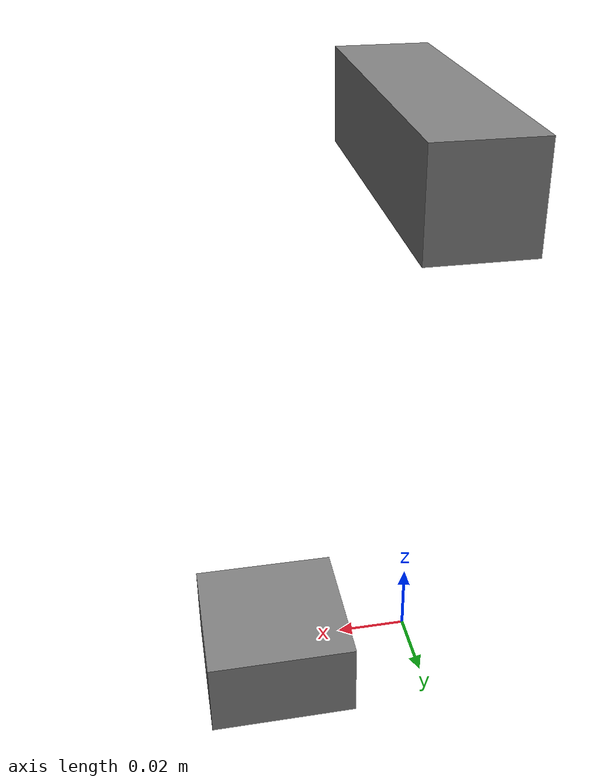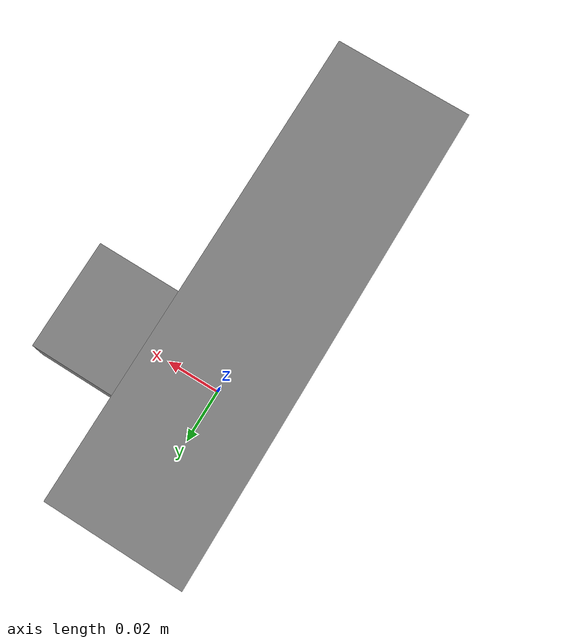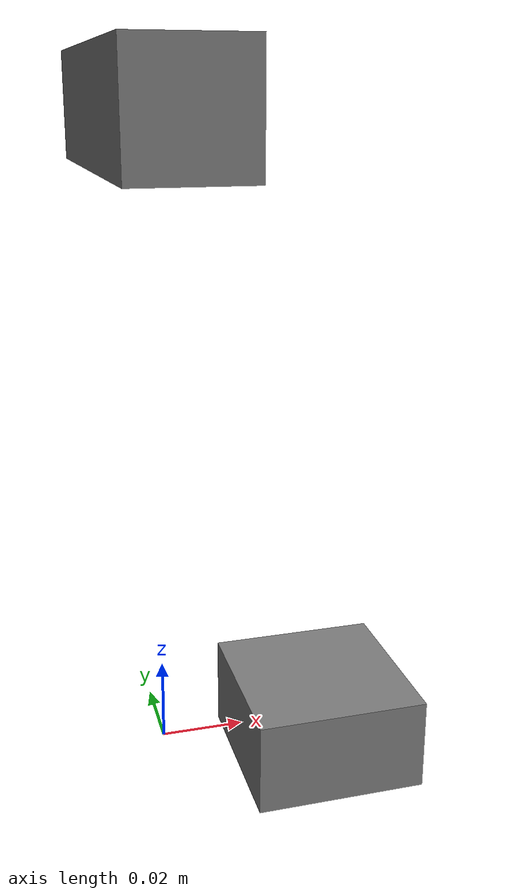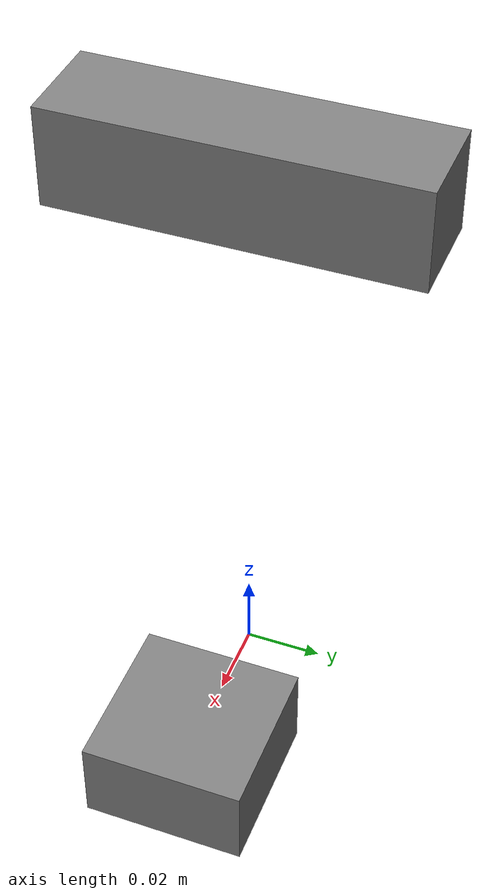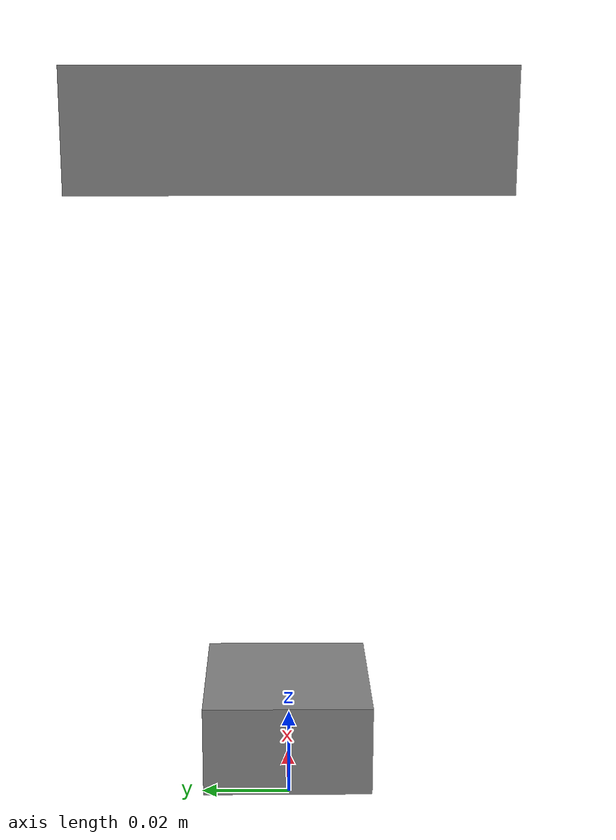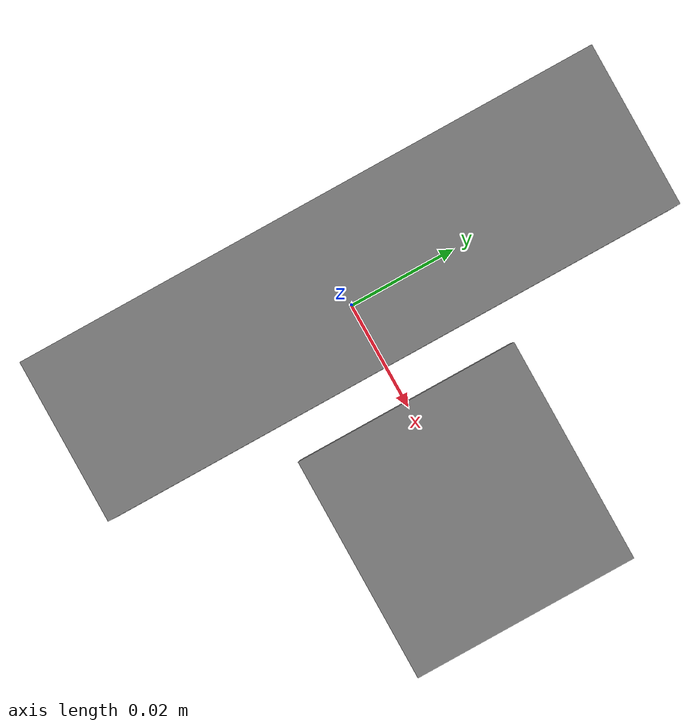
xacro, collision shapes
<?xml version="1.0"?>
<robot name="openarm_cameras" xmlns:xacro="http://www.ros.org/wiki/xacro">

  <xacro:include filename="$(find openarm_description)/urdf/cameras/_d435.urdf.xacro" />
  <xacro:include filename="$(find openarm_description)/urdf/cameras/_d405.urdf.xacro" />

  <!-- 頭部攝像頭 D435 參數 -->
  <xacro:arg name="head_parent" default="openarm_body_link0" />
  <xacro:arg name="head_xyz" default="0 0 0.15" />
  <xacro:arg name="head_rpy" default="0 0 0" />
  <xacro:arg name="head_enabled" default="true" />

  <!-- 左腕攝像頭 D405 參數 -->
  <xacro:arg name="left_parent" default="openarm_left_link7" />
  <xacro:arg name="left_xyz" default="0.04 0 0" />
  <xacro:arg name="left_rpy" default="0 1.5708 0" />
  <xacro:arg name="left_enabled" default="true" />

  <!-- 右腕攝像頭 D405 參數 -->
  <xacro:arg name="right_parent" default="openarm_right_link7" />
  <xacro:arg name="right_xyz" default="0.04 0 0" />
  <xacro:arg name="right_rpy" default="0 1.5708 0" />
  <xacro:arg name="right_enabled" default="true" />

  <!-- 虛擬根 link：與 RViz fixed frame 一致 -->
  <link name="world" />

  <!-- 空 parent link 定義（附加到 world，identity joint 僅為 URDF 單根結構） -->
  <xacro:if value="$(arg head_enabled)">
    <joint name="head_parent_joint" type="fixed">
      <origin xyz="0 0 0" rpy="0 0 0" />
      <parent link="world" />
      <child link="$(arg head_parent)" />
    </joint>
    <link name="$(arg head_parent)" />
  </xacro:if>

  <xacro:if value="$(arg left_enabled)">
    <joint name="left_parent_joint" type="fixed">
      <origin xyz="0 0 0" rpy="0 0 0" />
      <parent link="world" />
      <child link="$(arg left_parent)" />
    </joint>
    <link name="$(arg left_parent)" />
  </xacro:if>

  <xacro:if value="$(arg right_enabled)">
    <joint name="right_parent_joint" type="fixed">
      <origin xyz="0 0 0" rpy="0 0 0" />
      <parent link="world" />
      <child link="$(arg right_parent)" />
    </joint>
    <link name="$(arg right_parent)" />
  </xacro:if>

  <!-- 頭部攝像頭 D435 -->
  <xacro:if value="$(arg head_enabled)">
    <xacro:sensor_d435 parent="$(arg head_parent)" name="camera_head">
      <origin xyz="$(arg head_xyz)" rpy="$(arg head_rpy)" />
    </xacro:sensor_d435>
  </xacro:if>

  <!-- 左腕攝像頭 D405 -->
  <xacro:if value="$(arg left_enabled)">
    <xacro:sensor_d405 parent="$(arg left_parent)" name="camera_left">
      <origin xyz="$(arg left_xyz)" rpy="$(arg left_rpy)" />
    </xacro:sensor_d405>
  </xacro:if>

  <!-- 右腕攝像頭 D405 -->
  <xacro:if value="$(arg right_enabled)">
    <xacro:sensor_d405 parent="$(arg right_parent)" name="camera_right">
      <origin xyz="$(arg right_xyz)" rpy="$(arg right_rpy)" />
    </xacro:sensor_d405>
  </xacro:if>

</robot>

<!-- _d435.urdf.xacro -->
<robot name="sensor_d435" xmlns:xacro="http://ros.org/wiki/xacro">
  <xacro:include filename="$(find openarm_description)/urdf/cameras/_materials.urdf.xacro" />

  <xacro:macro name="sensor_d435" params="parent *origin name:=camera">
    <xacro:property name="M_PI" value="3.1415926535897931" />

    <!-- D435 攝像頭尺寸（來自 realsense2_description） -->
    <xacro:property name="d435_cam_width" value="0.090" />
    <xacro:property name="d435_cam_height" value="0.025" />
    <xacro:property name="d435_cam_depth" value="0.02505" />
    <xacro:property name="d435_cam_mount_from_center_offset" value="0.0149" />

    <!-- camera_link 直接附加到 parent，與 static TF 一致 -->
    <joint name="${name}_joint" type="fixed">
      <xacro:insert_block name="origin" />
      <parent link="${parent}" />
      <child link="${name}_link" />
    </joint>

    <link name="${name}_link">
      <visual>
        <!-- mesh 定位：相對於 camera_link 的偏移，與 realsense2_description 原始絕對位置一致 -->
        <origin xyz="${d435_cam_mount_from_center_offset} 0 ${d435_cam_height/2}" rpy="${M_PI/2} 0 ${M_PI/2}" />
        <geometry>
          <mesh filename="package://openarm_description/meshes/cameras/d435.stl" />
        </geometry>
        <material name="aluminum" />
      </visual>
      <collision>
        <origin xyz="0 0 0" rpy="0 0 0" />
        <geometry>
          <box size="${d435_cam_depth} ${d435_cam_width} ${d435_cam_height}" />
        </geometry>
      </collision>
      <inertial>
        <mass value="0.072" />
        <origin xyz="0 0 0" />
        <inertia ixx="0.003881243" ixy="0.0" ixz="0.0" iyy="0.000498940" iyz="0.0" izz="0.003879257" />
      </inertial>
    </link>
  </xacro:macro>
</robot>

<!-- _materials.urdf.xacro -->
<!-- RealSense 攝像頭材料定義（從 realsense2_description 合併到 openarm_description） -->
<robot xmlns:xacro="http://ros.org/wiki/xacro">
  <xacro:property name="realsense_materials_defined" default="false" />
  <xacro:unless value="${realsense_materials_defined}">
    <xacro:property name="realsense_materials_defined" value="true" />
    <material name="aluminum">
      <color rgba="0.5 0.5 0.5 1"/>
    </material>
    <material name="plastic">
      <color rgba="0.1 0.1 0.1 1"/>
    </material>
  </xacro:unless>
</robot>

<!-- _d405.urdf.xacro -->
<robot name="sensor_d405" xmlns:xacro="http://ros.org/wiki/xacro">
  <xacro:include filename="$(find openarm_description)/urdf/cameras/_materials.urdf.xacro" />

  <xacro:macro name="sensor_d405" params="parent *origin name:=camera">
    <xacro:property name="M_PI" value="3.1415926535897931" />

    <!-- D405 攝像頭尺寸（來自 realsense2_description） -->
    <xacro:property name="d405_cam_width" value="0.042" />
    <xacro:property name="d405_cam_height" value="0.042" />
    <xacro:property name="d405_cam_depth" value="0.023" />
    <xacro:property name="d405_cam_mount_from_center_offset" value="0.01465" />

    <!-- camera_link 直接附加到 parent，與 static TF 一致 -->
    <joint name="${name}_joint" type="fixed">
      <xacro:insert_block name="origin" />
      <parent link="${parent}" />
      <child link="${name}_link" />
    </joint>

    <link name="${name}_link">
      <visual>
        <!-- mesh 定位：相對於 camera_link 的偏移，與 realsense2_description 原始絕對位置一致 -->
        <origin xyz="${d405_cam_mount_from_center_offset} 0 ${d405_cam_height/2}" rpy="${M_PI/2} 0 ${M_PI/2}" />
        <geometry>
          <mesh filename="package://openarm_description/meshes/cameras/d405.stl" scale="0.001 0.001 0.001" />
        </geometry>
        <material name="aluminum" />
      </visual>
      <collision>
        <origin xyz="0 0 0" rpy="0 0 0" />
        <geometry>
          <box size="${d405_cam_depth} ${d405_cam_width} ${d405_cam_height}" />
        </geometry>
      </collision>
      <inertial>
        <mass value="0.072" />
        <origin xyz="0 0 0" />
        <inertia ixx="0.003881243" ixy="0.0" ixz="0.0" iyy="0.000498940" iyz="0.0" izz="0.003879257" />
      </inertial>
    </link>
  </xacro:macro>
</robot>
